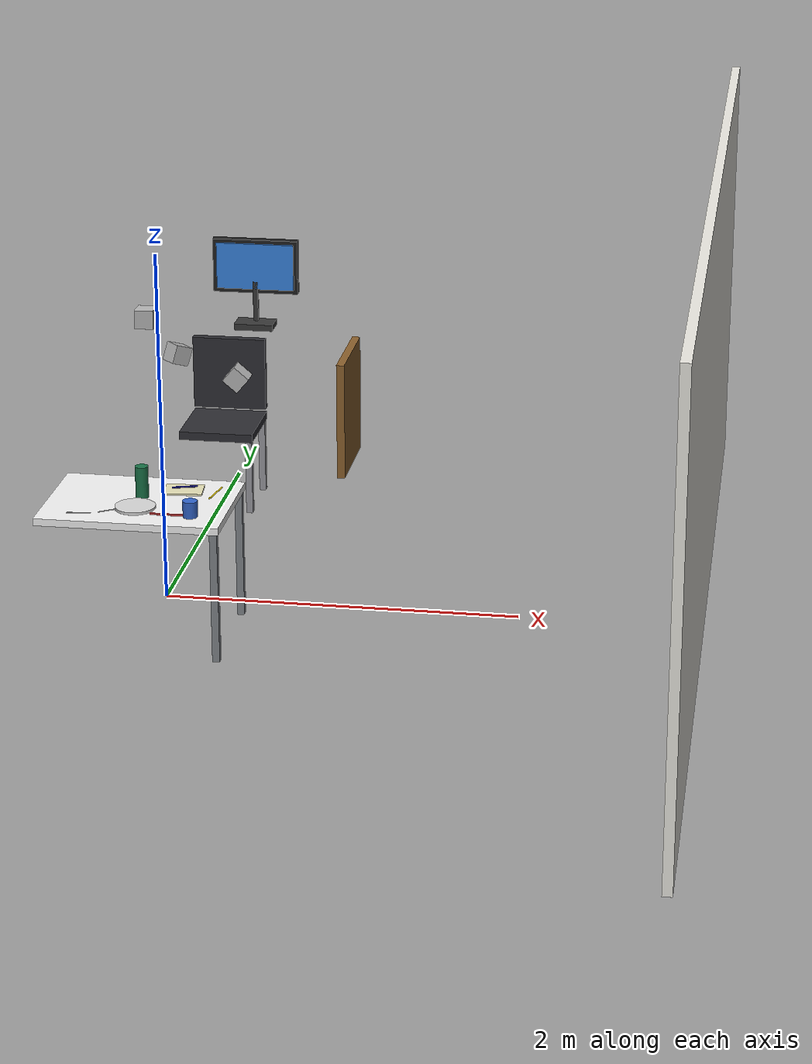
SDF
<sdf version="1.10">
 <world name="bps_room">
  <model name="wall_east">
   <static>true</static>
   <pose>3 0 1.25 0 0 0</pose>
   <link name="link">
    <collision name="collision">
     <geometry><box><size>0.050000000000000003 6 2.5</size></box></geometry>
    </collision>
    <visual name="visual">
     <geometry><box><size>0.050000000000000003 6 2.5</size></box></geometry>
     <material>
      <ambient>0.930000007 0.920000017 0.889999986 1</ambient>
      <diffuse>0.930000007 0.920000017 0.889999986 1</diffuse>
     </material>
    </visual>
    <inertial>
     <mass>1</mass>
     <inertia><ixx>1</ixx><ixy>0</ixy><ixz>0</ixz><iyy>1</iyy><iyz>0</iyz><izz>1</izz></inertia>
    </inertial>
   </link>
  </model>
  <model name="desk_leg_right">
   <static>true</static>
   <pose>0.65000000000000002 2.2999999999999998 0.375 0 0 0</pose>
   <link name="link">
    <collision name="collision">
     <geometry><box><size>0.050000000000000003 0.59999999999999998 0.75</size></box></geometry>
    </collision>
    <visual name="visual">
     <geometry><box><size>0.050000000000000003 0.59999999999999998 0.75</size></box></geometry>
     <material>
      <ambient>0.550000012 0.379999995 0.180000007 1</ambient>
      <diffuse>0.550000012 0.379999995 0.180000007 1</diffuse>
     </material>
    </visual>
    <inertial>
     <mass>1</mass>
     <inertia><ixx>1</ixx><ixy>0</ixy><ixz>0</ixz><iyy>1</iyy><iyz>0</iyz><izz>1</izz></inertia>
    </inertial>
   </link>
  </model>
  <model name="monitor_base">
   <static>true</static>
   <pose>0 2.5499999999999998 0.81999999999999995 0 0 0</pose>
   <link name="link">
    <collision name="collision">
     <geometry><box><size>0.25 0.14999999999999999 0.040000000000000001</size></box></geometry>
    </collision>
    <visual name="visual">
     <geometry><box><size>0.25 0.14999999999999999 0.040000000000000001</size></box></geometry>
     <material>
      <ambient>0.219999999 0.219999999 0.219999999 1</ambient>
      <diffuse>0.219999999 0.219999999 0.219999999 1</diffuse>
     </material>
    </visual>
    <inertial>
     <mass>1</mass>
     <inertia><ixx>1</ixx><ixy>0</ixy><ixz>0</ixz><iyy>1</iyy><iyz>0</iyz><izz>1</izz></inertia>
    </inertial>
   </link>
  </model>
  <model name="monitor_stand">
   <static>true</static>
   <pose>0 2.5800000000000001 0.96999999999999997 0 0 0</pose>
   <link name="link">
    <collision name="collision">
     <geometry><box><size>0.029999999999999999 0.029999999999999999 0.26000000000000001</size></box></geometry>
    </collision>
    <visual name="visual">
     <geometry><box><size>0.029999999999999999 0.029999999999999999 0.26000000000000001</size></box></geometry>
     <material>
      <ambient>0.219999999 0.219999999 0.219999999 1</ambient>
      <diffuse>0.219999999 0.219999999 0.219999999 1</diffuse>
     </material>
    </visual>
    <inertial>
     <mass>1</mass>
     <inertia><ixx>1</ixx><ixy>0</ixy><ixz>0</ixz><iyy>1</iyy><iyz>0</iyz><izz>1</izz></inertia>
    </inertial>
   </link>
  </model>
  <model name="monitor_screen">
   <static>true</static>
   <pose>0 2.6000000000000001 1.2 0 0 0</pose>
   <link name="link">
    <collision name="collision">
     <geometry><box><size>0.55000000000000004 0.050000000000000003 0.34999999999999998</size></box></geometry>
    </collision>
    <visual name="visual">
     <geometry><box><size>0.55000000000000004 0.050000000000000003 0.34999999999999998</size></box></geometry>
     <material>
      <ambient>0.119999997 0.119999997 0.119999997 1</ambient>
      <diffuse>0.119999997 0.119999997 0.119999997 1</diffuse>
     </material>
    </visual>
    <inertial>
     <mass>1</mass>
     <inertia><ixx>1</ixx><ixy>0</ixy><ixz>0</ixz><iyy>1</iyy><iyz>0</iyz><izz>1</izz></inertia>
    </inertial>
   </link>
  </model>
  <model name="monitor_face">
   <static>true</static>
   <pose>0 2.5699999999999998 1.2 0 0 0</pose>
   <link name="link">
    <visual name="visual">
     <geometry><box><size>0.5 0.01 0.29999999999999999</size></box></geometry>
     <material>
      <ambient>0.219999999 0.519999981 0.879999995 1</ambient>
      <diffuse>0.219999999 0.519999981 0.879999995 1</diffuse>
      <emissive>0.100000001 0.25 0.449999988 1</emissive>
     </material>
    </visual>
    <inertial>
     <mass>1</mass>
     <inertia><ixx>1</ixx><ixy>0</ixy><ixz>0</ixz><iyy>1</iyy><iyz>0</iyz><izz>1</izz></inertia>
    </inertial>
   </link>
  </model>
  <model name="chair_seat">
   <static>true</static>
   <pose>0 1.55 0.47999999999999998 0 0 0</pose>
   <link name="link">
    <collision name="collision">
     <geometry><box><size>0.45000000000000001 0.45000000000000001 0.050000000000000003</size></box></geometry>
    </collision>
    <visual name="visual">
     <geometry><box><size>0.45000000000000001 0.45000000000000001 0.050000000000000003</size></box></geometry>
     <material>
      <ambient>0.180000007 0.180000007 0.200000003 1</ambient>
      <diffuse>0.180000007 0.180000007 0.200000003 1</diffuse>
     </material>
    </visual>
    <inertial>
     <mass>1</mass>
     <inertia><ixx>1</ixx><ixy>0</ixy><ixz>0</ixz><iyy>1</iyy><iyz>0</iyz><izz>1</izz></inertia>
    </inertial>
   </link>
  </model>
  <model name="chair_back">
   <static>true</static>
   <pose>0 1.77 0.75 0 0 0</pose>
   <link name="link">
    <collision name="collision">
     <geometry><box><size>0.45000000000000001 0.050000000000000003 0.45000000000000001</size></box></geometry>
    </collision>
    <visual name="visual">
     <geometry><box><size>0.45000000000000001 0.050000000000000003 0.45000000000000001</size></box></geometry>
     <material>
      <ambient>0.180000007 0.180000007 0.200000003 1</ambient>
      <diffuse>0.180000007 0.180000007 0.200000003 1</diffuse>
     </material>
    </visual>
    <inertial>
     <mass>1</mass>
     <inertia><ixx>1</ixx><ixy>0</ixy><ixz>0</ixz><iyy>1</iyy><iyz>0</iyz><izz>1</izz></inertia>
    </inertial>
   </link>
  </model>
  <model name="chair_leg_fr">
   <static>true</static>
   <pose>0.20000000000000001 1.3500000000000001 0.23999999999999999 0 0 0</pose>
   <link name="link">
    <collision name="collision">
     <geometry><box><size>0.040000000000000001 0.040000000000000001 0.47999999999999998</size></box></geometry>
    </collision>
    <visual name="visual">
     <geometry><box><size>0.040000000000000001 0.040000000000000001 0.47999999999999998</size></box></geometry>
     <material>
      <ambient>0.600000024 0.600000024 0.620000005 1</ambient>
      <diffuse>0.600000024 0.600000024 0.620000005 1</diffuse>
     </material>
    </visual>
    <inertial>
     <mass>1</mass>
     <inertia><ixx>1</ixx><ixy>0</ixy><ixz>0</ixz><iyy>1</iyy><iyz>0</iyz><izz>1</izz></inertia>
    </inertial>
   </link>
  </model>
  <model name="chair_leg_br">
   <static>true</static>
   <pose>0.20000000000000001 1.75 0.23999999999999999 0 0 0</pose>
   <link name="link">
    <collision name="collision">
     <geometry><box><size>0.040000000000000001 0.040000000000000001 0.47999999999999998</size></box></geometry>
    </collision>
    <visual name="visual">
     <geometry><box><size>0.040000000000000001 0.040000000000000001 0.47999999999999998</size></box></geometry>
     <material>
      <ambient>0.600000024 0.600000024 0.620000005 1</ambient>
      <diffuse>0.600000024 0.600000024 0.620000005 1</diffuse>
     </material>
    </visual>
    <inertial>
     <mass>1</mass>
     <inertia><ixx>1</ixx><ixy>0</ixy><ixz>0</ixz><iyy>1</iyy><iyz>0</iyz><izz>1</izz></inertia>
    </inertial>
   </link>
  </model>
  <model name="experiment_table">
   <static>true</static>
   <pose>0 -0.5 0.75 0 0 0</pose>
   <link name="link">
    <collision name="collision">
     <geometry><box><size>1 0.69999999999999996 0.040000000000000001</size></box></geometry>
    </collision>
    <visual name="visual">
     <geometry><box><size>1 0.69999999999999996 0.040000000000000001</size></box></geometry>
     <material>
      <ambient>0.959999979 0.959999979 0.959999979 1</ambient>
      <diffuse>0.959999979 0.959999979 0.959999979 1</diffuse>
     </material>
    </visual>
    <inertial>
     <mass>1</mass>
     <inertia><ixx>1</ixx><ixy>0</ixy><ixz>0</ixz><iyy>1</iyy><iyz>0</iyz><izz>1</izz></inertia>
    </inertial>
   </link>
  </model>
  <model name="table_leg_fr">
   <static>true</static>
   <pose>0.46999999999999997 -0.81999999999999995 0.375 0 0 0</pose>
   <link name="link">
    <collision name="collision">
     <geometry><box><size>0.040000000000000001 0.040000000000000001 0.75</size></box></geometry>
    </collision>
    <visual name="visual">
     <geometry><box><size>0.040000000000000001 0.040000000000000001 0.75</size></box></geometry>
     <material>
      <ambient>0.5 0.519999981 0.540000021 1</ambient>
      <diffuse>0.5 0.519999981 0.540000021 1</diffuse>
     </material>
    </visual>
    <inertial>
     <mass>1</mass>
     <inertia><ixx>1</ixx><ixy>0</ixy><ixz>0</ixz><iyy>1</iyy><iyz>0</iyz><izz>1</izz></inertia>
    </inertial>
   </link>
  </model>
  <model name="table_leg_br">
   <static>true</static>
   <pose>0.46999999999999997 -0.17999999999999999 0.375 0 0 0</pose>
   <link name="link">
    <collision name="collision">
     <geometry><box><size>0.040000000000000001 0.040000000000000001 0.75</size></box></geometry>
    </collision>
    <visual name="visual">
     <geometry><box><size>0.040000000000000001 0.040000000000000001 0.75</size></box></geometry>
     <material>
      <ambient>0.5 0.519999981 0.540000021 1</ambient>
      <diffuse>0.5 0.519999981 0.540000021 1</diffuse>
     </material>
    </visual>
    <inertial>
     <mass>1</mass>
     <inertia><ixx>1</ixx><ixy>0</ixy><ixz>0</ixz><iyy>1</iyy><iyz>0</iyz><izz>1</izz></inertia>
    </inertial>
   </link>
  </model>
  <model name="obj_plate">
   <static>false</static>
   <pose>0 -0.62 0.77749999999999997 0 0 0</pose>
   <link name="link">
    <collision name="collision">
     <geometry><cylinder><radius>0.11</radius><length>0.014999999999999999</length></cylinder></geometry>
    </collision>
    <visual name="visual">
     <geometry><cylinder><radius>0.11</radius><length>0.014999999999999999</length></cylinder></geometry>
     <material>
      <ambient>0.850000024 0.850000024 0.850000024 1</ambient>
      <diffuse>0.850000024 0.850000024 0.850000024 1</diffuse>
      <specular>0.300000012 0.300000012 0.300000012 1</specular>
     </material>
     <plugin name="gz::sim::systems::Label" filename="gz-sim-label-system"><label>1</label></plugin>
    </visual>
    <inertial>
     <mass>1</mass>
     <inertia><ixx>1</ixx><ixy>0</ixy><ixz>0</ixz><iyy>1</iyy><iyz>0</iyz><izz>1</izz></inertia>
    </inertial>
    <sensor name="obj_plate_contact_sensor" type="contact">
     <contact><collision>collision</collision></contact>
     <update_rate>30</update_rate>
     <always_on>true</always_on>
    </sensor>
   </link>
  </model>
  <model name="obj_bottle">
   <static>false</static>
   <pose>0 -0.46000000000000002 0.85999999999999999 0 0 0</pose>
   <link name="link">
    <collision name="collision">
     <geometry>
      <cylinder><radius>0.035000000000000003</radius><length>0.17999999999999999</length></cylinder>
     </geometry>
    </collision>
    <visual name="visual">
     <geometry>
      <cylinder><radius>0.035000000000000003</radius><length>0.17999999999999999</length></cylinder>
     </geometry>
     <material>
      <ambient>0.100000001 0.449999988 0.280000001 1</ambient>
      <diffuse>0.100000001 0.449999988 0.280000001 1</diffuse>
      <specular>0.400000006 0.400000006 0.400000006 1</specular>
     </material>
     <plugin name="gz::sim::systems::Label" filename="gz-sim-label-system"><label>3</label></plugin>
    </visual>
    <inertial>
     <mass>1</mass>
     <inertia><ixx>1</ixx><ixy>0</ixy><ixz>0</ixz><iyy>1</iyy><iyz>0</iyz><izz>1</izz></inertia>
    </inertial>
    <sensor name="obj_bottle_contact_sensor" type="contact">
     <contact><collision>collision</collision></contact>
     <update_rate>30</update_rate>
     <always_on>true</always_on>
    </sensor>
   </link>
  </model>
  <model name="obj_mug">
   <static>false</static>
   <pose>0.32000000000000001 -0.69999999999999996 0.81499999999999995 0 0 0</pose>
   <link name="link">
    <collision name="collision">
     <geometry>
      <cylinder><radius>0.040000000000000001</radius><length>0.089999999999999997</length></cylinder>
     </geometry>
    </collision>
    <visual name="visual">
     <geometry>
      <cylinder><radius>0.040000000000000001</radius><length>0.089999999999999997</length></cylinder>
     </geometry>
     <material>
      <ambient>0.200000003 0.400000006 0.800000012 1</ambient>
      <diffuse>0.200000003 0.400000006 0.800000012 1</diffuse>
      <specular>0.300000012 0.300000012 0.300000012 1</specular>
     </material>
     <plugin name="gz::sim::systems::Label" filename="gz-sim-label-system"><label>4</label></plugin>
    </visual>
    <inertial>
     <mass>1</mass>
     <inertia><ixx>1</ixx><ixy>0</ixy><ixz>0</ixz><iyy>1</iyy><iyz>0</iyz><izz>1</izz></inertia>
    </inertial>
    <sensor name="obj_mug_contact_sensor" type="contact">
     <contact><collision>collision</collision></contact>
     <update_rate>30</update_rate>
     <always_on>true</always_on>
    </sensor>
   </link>
  </model>
  <model name="obj_toothbrush">
   <static>false</static>
   <pose>0.19 -0.69999999999999996 0.77400000000000002 0 0 0</pose>
   <link name="link">
    <collision name="collision">
     <geometry><box><size>0.17999999999999999 0.012 0.0080000000000000002</size></box></geometry>
    </collision>
    <visual name="visual">
     <geometry><box><size>0.17999999999999999 0.012 0.0080000000000000002</size></box></geometry>
     <material>
      <ambient>0.850000024 0.25 0.25 1</ambient>
      <diffuse>0.850000024 0.25 0.25 1</diffuse>
      <specular>0.300000012 0.300000012 0.300000012 1</specular>
     </material>
     <plugin name="gz::sim::systems::Label" filename="gz-sim-label-system"><label>5</label></plugin>
    </visual>
    <inertial>
     <mass>1</mass>
     <inertia><ixx>1</ixx><ixy>0</ixy><ixz>0</ixz><iyy>1</iyy><iyz>0</iyz><izz>1</izz></inertia>
    </inertial>
    <sensor name="obj_toothbrush_contact_sensor" type="contact">
     <contact><collision>collision</collision></contact>
     <update_rate>30</update_rate>
     <always_on>true</always_on>
    </sensor>
   </link>
  </model>
  <model name="obj_notebook">
   <static>false</static>
   <pose>0.20000000000000001 -0.33000000000000002 0.77500000000000002 0 0 0.09999999999999995</pose>
   <link name="link">
    <collision name="collision">
     <geometry><box><size>0.20999999999999999 0.14999999999999999 0.01</size></box></geometry>
    </collision>
    <visual name="visual">
     <geometry><box><size>0.20999999999999999 0.14999999999999999 0.01</size></box></geometry>
     <material>
      <ambient>0.899999976 0.879999995 0.720000029 1</ambient>
      <diffuse>0.899999976 0.879999995 0.720000029 1</diffuse>
      <specular>0.100000001 0.100000001 0.100000001 1</specular>
     </material>
     <plugin name="gz::sim::systems::Label" filename="gz-sim-label-system"><label>6</label></plugin>
    </visual>
    <inertial>
     <mass>1</mass>
     <inertia><ixx>1</ixx><ixy>0</ixy><ixz>0</ixz><iyy>1</iyy><iyz>0</iyz><izz>1</izz></inertia>
    </inertial>
    <sensor name="obj_notebook_contact_sensor" type="contact">
     <contact><collision>collision</collision></contact>
     <update_rate>30</update_rate>
     <always_on>true</always_on>
    </sensor>
   </link>
  </model>
  <model name="obj_pen">
   <static>false</static>
   <pose>0.20000000000000001 -0.31 0.78500000000000003 3.141592653559568 1.5707926536662187 -2.8415926536181968</pose>
   <link name="link">
    <collision name="collision">
     <geometry>
      <cylinder><radius>0.0050000000000000001</radius><length>0.14000000000000001</length></cylinder>
     </geometry>
    </collision>
    <visual name="visual">
     <geometry>
      <cylinder><radius>0.0050000000000000001</radius><length>0.14000000000000001</length></cylinder>
     </geometry>
     <material>
      <ambient>0.100000001 0.100000001 0.550000012 1</ambient>
      <diffuse>0.100000001 0.100000001 0.550000012 1</diffuse>
      <specular>0.5 0.5 0.5 1</specular>
     </material>
     <plugin name="gz::sim::systems::Label" filename="gz-sim-label-system"><label>7</label></plugin>
    </visual>
    <inertial>
     <mass>1</mass>
     <inertia><ixx>1</ixx><ixy>0</ixy><ixz>0</ixz><iyy>1</iyy><iyz>0</iyz><izz>1</izz></inertia>
    </inertial>
    <sensor name="obj_pen_contact_sensor" type="contact">
     <contact><collision>collision</collision></contact>
     <update_rate>30</update_rate>
     <always_on>true</always_on>
    </sensor>
   </link>
  </model>
  <model name="obj_pencil">
   <static>false</static>
   <pose>0.38 -0.34999999999999998 0.77449999999999997 3.1415926535897931 1.5707926535453185 -1.7415926535859911</pose>
   <link name="link">
    <collision name="collision">
     <geometry>
      <cylinder><radius>0.0044999999999999997</radius><length>0.17499999999999999</length></cylinder>
     </geometry>
    </collision>
    <visual name="visual">
     <geometry>
      <cylinder><radius>0.0044999999999999997</radius><length>0.17499999999999999</length></cylinder>
     </geometry>
     <material>
      <ambient>0.949999988 0.850000024 0.100000001 1</ambient>
      <diffuse>0.949999988 0.850000024 0.100000001 1</diffuse>
      <specular>0.400000006 0.400000006 0.400000006 1</specular>
     </material>
     <plugin name="gz::sim::systems::Label" filename="gz-sim-label-system"><label>8</label></plugin>
    </visual>
    <inertial>
     <mass>1</mass>
     <inertia><ixx>1</ixx><ixy>0</ixy><ixz>0</ixz><iyy>1</iyy><iyz>0</iyz><izz>1</izz></inertia>
    </inertial>
    <sensor name="obj_pencil_contact_sensor" type="contact">
     <contact><collision>collision</collision></contact>
     <update_rate>30</update_rate>
     <always_on>true</always_on>
    </sensor>
   </link>
  </model>
  <model name="obj_cable">
   <static>false</static>
   <link name="link">
    <collision name="collision_seg1">
     <pose>-0.28000000000000003 -0.73499999999999999 0.77149999999999996 0 0 0.099999999999999964</pose>
     <geometry><box><size>0.13 0.0060000000000000001 0.0030000000000000001</size></box></geometry>
    </collision>
    <visual name="visual_seg1">
     <pose>-0.28000000000000003 -0.73499999999999999 0.77149999999999996 0 0 0.099999999999999964</pose>
     <geometry><box><size>0.13 0.0060000000000000001 0.0030000000000000001</size></box></geometry>
     <material>
      <ambient>0.0500000007 0.0500000007 0.0500000007 1</ambient>
      <diffuse>0.0500000007 0.0500000007 0.0500000007 1</diffuse>
      <specular>0.200000003 0.200000003 0.200000003 1</specular>
     </material>
     <plugin name="gz::sim::systems::Label" filename="gz-sim-label-system"><label>12</label></plugin>
    </visual>
    <collision name="collision_seg2">
     <pose>-0.13 -0.68500000000000005 0.77449999999999997 0 0 0.59999999999999998</pose>
     <geometry><box><size>0.12 0.0060000000000000001 0.0030000000000000001</size></box></geometry>
    </collision>
    <visual name="visual_seg2">
     <pose>-0.13 -0.68500000000000005 0.77449999999999997 0 0 0.59999999999999998</pose>
     <geometry><box><size>0.12 0.0060000000000000001 0.0030000000000000001</size></box></geometry>
     <material>
      <ambient>0.0500000007 0.0500000007 0.0500000007 1</ambient>
      <diffuse>0.0500000007 0.0500000007 0.0500000007 1</diffuse>
      <specular>0.200000003 0.200000003 0.200000003 1</specular>
     </material>
     <plugin name="gz::sim::systems::Label" filename="gz-sim-label-system"><label>12</label></plugin>
    </visual>
    <inertial>
     <mass>1</mass>
     <inertia><ixx>1</ixx><ixy>0</ixy><ixz>0</ixz><iyy>1</iyy><iyz>0</iyz><izz>1</izz></inertia>
    </inertial>
    <sensor name="obj_cable_contact_sensor" type="contact">
     <contact><collision>collision_seg1</collision><collision>collision_seg2</collision></contact>
     <update_rate>30</update_rate>
     <always_on>true</always_on>
    </sensor>
   </link>
  </model>
  <model name="depth_camera">
   <static>true</static>
   <pose>1.6826342061904143e-06 -0.5 1.8361542224884033 3.1415899979989477 1.57079000476762 3.1415899979989477</pose>
   <link name="link">
    <pose>0.050000000000000003 0.050000000000000003 0.050000000000000003 0 0 0</pose>
    <inertial>
     <mass>0.10000000000000001</mass>
     <inertia>
      <ixx>0.00016666700000000001</ixx>
      <iyy>0.00016666700000000001</iyy>
      <izz>0.00016666700000000001</izz>
      <ixy>0</ixy>
      <ixz>0</ixz>
      <iyz>0</iyz>
     </inertia>
    </inertial>
    <collision name="collision">
     <geometry><box><size>0.10000000000000001 0.10000000000000001 0.10000000000000001</size></box></geometry>
    </collision>
    <visual name="visual">
     <geometry><box><size>0.10000000000000001 0.10000000000000001 0.10000000000000001</size></box></geometry>
    </visual>
    <sensor name="depth_camera1" type="depth_camera">
     <topic>depth_camera</topic>
     <update_rate>10</update_rate>
     <enable_metrics>false</enable_metrics>
     <camera>
      <horizontal_fov>1.2</horizontal_fov>
      <image>
       <width>640</width>
       <height>480</height>
       <format>R_FLOAT32</format>
       <anti_aliasing>4</anti_aliasing>
      </image>
      <camera_info_topic>__default__</camera_info_topic>
      <triggered>false</triggered>
      <clip><near>0.10000000000000001</near><far>2</far></clip>
      <save enabled="false"><path>__default__</path></save>
      <visibility_mask>4294967295</visibility_mask>
      <noise><type>none</type><mean>0</mean><stddev>0</stddev></noise>
      <distortion><k1>0</k1><k2>0</k2><k3>0</k3><p1>0</p1><p2>0</p2><center>0.5 0.5</center></distortion>
      <lens>
       <type>stereographic</type>
       <scale_to_hfov>true</scale_to_hfov>
       <cutoff_angle>1.5707963267948966</cutoff_angle>
       <env_texture_size>256</env_texture_size>
      </lens>
     </camera>
    </sensor>
    <sensor name="rgb_camera" type="camera">
     <topic>rgb_camera</topic>
     <update_rate>10</update_rate>
     <enable_metrics>false</enable_metrics>
     <camera>
      <horizontal_fov>1.2</horizontal_fov>
      <image><width>640</width><height>480</height><format>RGB_INT8</format><anti_aliasing>4</anti_aliasing></image>
      <camera_info_topic>__default__</camera_info_topic>
      <triggered>false</triggered>
      <clip><near>0.10000000000000001</near><far>2</far></clip>
      <save enabled="false"><path>__default__</path></save>
      <visibility_mask>4294967295</visibility_mask>
      <noise><type>none</type><mean>0</mean><stddev>0</stddev></noise>
      <distortion><k1>0</k1><k2>0</k2><k3>0</k3><p1>0</p1><p2>0</p2><center>0.5 0.5</center></distortion>
      <lens>
       <type>stereographic</type>
       <scale_to_hfov>true</scale_to_hfov>
       <cutoff_angle>1.5707963267948966</cutoff_angle>
       <env_texture_size>256</env_texture_size>
      </lens>
     </camera>
    </sensor>
    <sensor name="semantic_camera" type="segmentation_camera">
     <topic>semantic_camera</topic>
     <update_rate>10</update_rate>
     <enable_metrics>false</enable_metrics>
     <camera>
      <horizontal_fov>1.2</horizontal_fov>
      <image><width>640</width><height>480</height></image>
      <clip><near>0.1</near><far>100</far></clip>
      <segmentation_type>semantic</segmentation_type>
     </camera>
    </sensor>
   </link>
  </model>
  <model name="depth_camera_v2">
   <static>true</static>
   <pose>0.6180409430198727 -0.45104666666666665 1.497744443118978 0.0 0.8726646259971648 3.141592653589793</pose>
   <link name="link">
    <pose>0.050000000000000003 0.050000000000000003 0.050000000000000003 0 0 0</pose>
    <inertial>
     <mass>0.10000000000000001</mass>
     <inertia>
      <ixx>0.00016666700000000001</ixx>
      <iyy>0.00016666700000000001</iyy>
      <izz>0.00016666700000000001</izz>
      <ixy>0</ixy>
      <ixz>0</ixz>
      <iyz>0</iyz>
     </inertia>
    </inertial>
    <collision name="collision">
     <geometry><box><size>0.10000000000000001 0.10000000000000001 0.10000000000000001</size></box></geometry>
    </collision>
    <visual name="visual">
     <geometry><box><size>0.10000000000000001 0.10000000000000001 0.10000000000000001</size></box></geometry>
    </visual>
    <sensor name="depth_camera2" type="depth_camera">
     <topic>depth_camera_v2</topic>
     <update_rate>10</update_rate>
     <enable_metrics>false</enable_metrics>
     <camera>
      <horizontal_fov>1.2</horizontal_fov>
      <image>
       <width>640</width>
       <height>480</height>
       <format>R_FLOAT32</format>
       <anti_aliasing>4</anti_aliasing>
      </image>
      <camera_info_topic>__default__</camera_info_topic>
      <triggered>false</triggered>
      <clip><near>0.10000000000000001</near><far>2</far></clip>
      <save enabled="false"><path>__default__</path></save>
      <visibility_mask>4294967295</visibility_mask>
      <noise><type>none</type><mean>0</mean><stddev>0</stddev></noise>
      <distortion><k1>0</k1><k2>0</k2><k3>0</k3><p1>0</p1><p2>0</p2><center>0.5 0.5</center></distortion>
      <lens>
       <type>stereographic</type>
       <scale_to_hfov>true</scale_to_hfov>
       <cutoff_angle>1.5707963267948966</cutoff_angle>
       <env_texture_size>256</env_texture_size>
      </lens>
     </camera>
    </sensor>
    <sensor name="rgb_camera2" type="camera">
     <topic>rgb_camera_v2</topic>
     <update_rate>10</update_rate>
     <enable_metrics>false</enable_metrics>
     <camera>
      <horizontal_fov>1.2</horizontal_fov>
      <image><width>640</width><height>480</height><format>RGB_INT8</format><anti_aliasing>4</anti_aliasing></image>
      <camera_info_topic>__default__</camera_info_topic>
      <triggered>false</triggered>
      <clip><near>0.10000000000000001</near><far>2</far></clip>
      <save enabled="false"><path>__default__</path></save>
      <visibility_mask>4294967295</visibility_mask>
      <noise><type>none</type><mean>0</mean><stddev>0</stddev></noise>
      <distortion><k1>0</k1><k2>0</k2><k3>0</k3><p1>0</p1><p2>0</p2><center>0.5 0.5</center></distortion>
      <lens>
       <type>stereographic</type>
       <scale_to_hfov>true</scale_to_hfov>
       <cutoff_angle>1.5707963267948966</cutoff_angle>
       <env_texture_size>256</env_texture_size>
      </lens>
     </camera>
    </sensor>
    <sensor name="semantic_camera2" type="segmentation_camera">
     <topic>semantic_camera_v2</topic>
     <update_rate>10</update_rate>
     <enable_metrics>false</enable_metrics>
     <camera>
      <horizontal_fov>1.2</horizontal_fov>
      <image><width>640</width><height>480</height></image>
      <clip><near>0.1</near><far>100</far></clip>
      <segmentation_type>semantic</segmentation_type>
     </camera>
    </sensor>
   </link>
  </model>
  <model name="depth_camera_v6">
   <static>true</static>
   <pose>0.19291361971651114 -0.23338638028348888 1.5774233587073176 -0.0 1.2217304763960306 -2.356194490192345</pose>
   <link name="link">
    <pose>0.050000000000000003 0.050000000000000003 0.050000000000000003 0 0 0</pose>
    <inertial>
     <mass>0.10000000000000001</mass>
     <inertia>
      <ixx>0.00016666700000000001</ixx>
      <iyy>0.00016666700000000001</iyy>
      <izz>0.00016666700000000001</izz>
      <ixy>0</ixy>
      <ixz>0</ixz>
      <iyz>0</iyz>
     </inertia>
    </inertial>
    <collision name="collision">
     <geometry><box><size>0.10000000000000001 0.10000000000000001 0.10000000000000001</size></box></geometry>
    </collision>
    <visual name="visual">
     <geometry><box><size>0.10000000000000001 0.10000000000000001 0.10000000000000001</size></box></geometry>
    </visual>
    <sensor name="depth_camera6" type="depth_camera">
     <topic>depth_camera_v6</topic>
     <update_rate>10</update_rate>
     <enable_metrics>false</enable_metrics>
     <camera>
      <horizontal_fov>1.2</horizontal_fov>
      <image>
       <width>640</width>
       <height>480</height>
       <format>R_FLOAT32</format>
       <anti_aliasing>4</anti_aliasing>
      </image>
      <camera_info_topic>__default__</camera_info_topic>
      <triggered>false</triggered>
      <clip><near>0.10000000000000001</near><far>2</far></clip>
      <save enabled="false"><path>__default__</path></save>
      <visibility_mask>4294967295</visibility_mask>
      <noise><type>none</type><mean>0</mean><stddev>0</stddev></noise>
      <distortion><k1>0</k1><k2>0</k2><k3>0</k3><p1>0</p1><p2>0</p2><center>0.5 0.5</center></distortion>
      <lens>
       <type>stereographic</type>
       <scale_to_hfov>true</scale_to_hfov>
       <cutoff_angle>1.5707963267948966</cutoff_angle>
       <env_texture_size>256</env_texture_size>
      </lens>
     </camera>
    </sensor>
    <sensor name="rgb_camera6" type="camera">
     <topic>rgb_camera_v6</topic>
     <update_rate>10</update_rate>
     <enable_metrics>false</enable_metrics>
     <camera>
      <horizontal_fov>1.2</horizontal_fov>
      <image><width>640</width><height>480</height><format>RGB_INT8</format><anti_aliasing>4</anti_aliasing></image>
      <camera_info_topic>__default__</camera_info_topic>
      <triggered>false</triggered>
      <clip><near>0.10000000000000001</near><far>2</far></clip>
      <save enabled="false"><path>__default__</path></save>
      <visibility_mask>4294967295</visibility_mask>
      <noise><type>none</type><mean>0</mean><stddev>0</stddev></noise>
      <distortion><k1>0</k1><k2>0</k2><k3>0</k3><p1>0</p1><p2>0</p2><center>0.5 0.5</center></distortion>
      <lens>
       <type>stereographic</type>
       <scale_to_hfov>true</scale_to_hfov>
       <cutoff_angle>1.5707963267948966</cutoff_angle>
       <env_texture_size>256</env_texture_size>
      </lens>
     </camera>
    </sensor>
    <sensor name="semantic_camera6" type="segmentation_camera">
     <topic>semantic_camera_v6</topic>
     <update_rate>10</update_rate>
     <enable_metrics>false</enable_metrics>
     <camera>
      <horizontal_fov>1.2</horizontal_fov>
      <image><width>640</width><height>480</height></image>
      <clip><near>0.1</near><far>100</far></clip>
      <segmentation_type>semantic</segmentation_type>
     </camera>
    </sensor>
   </link>
  </model>
 </world>
</sdf>
